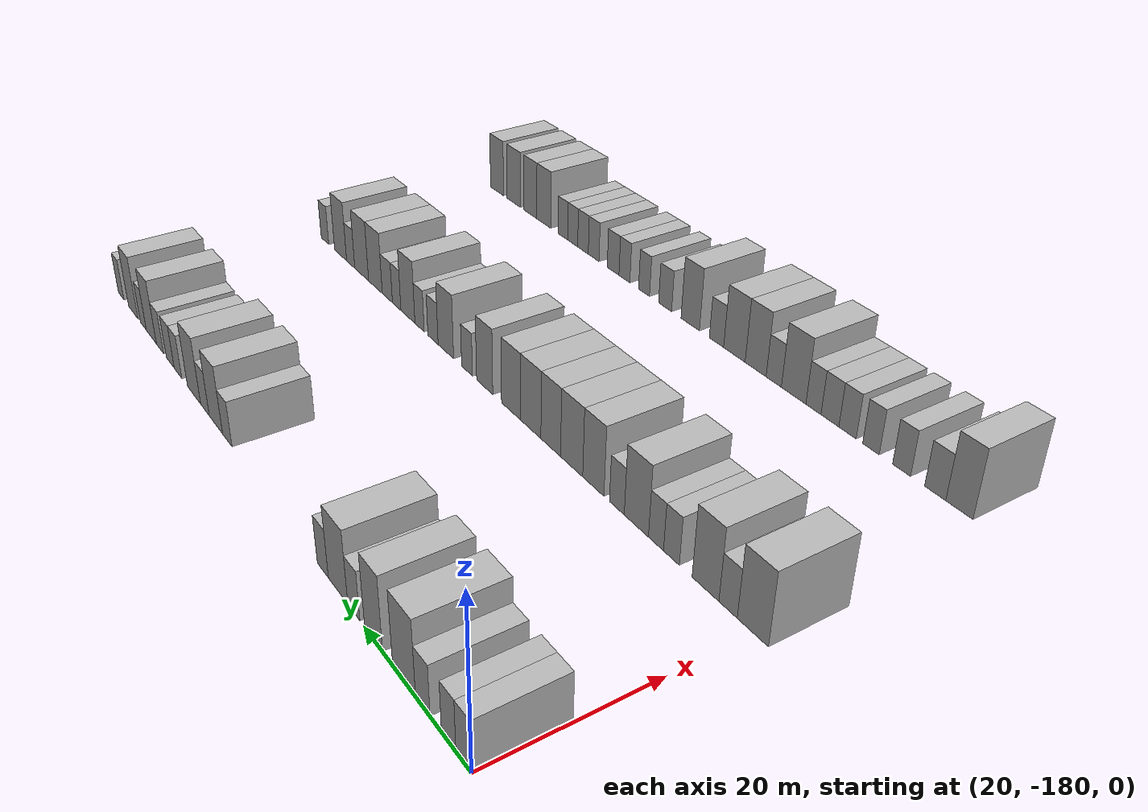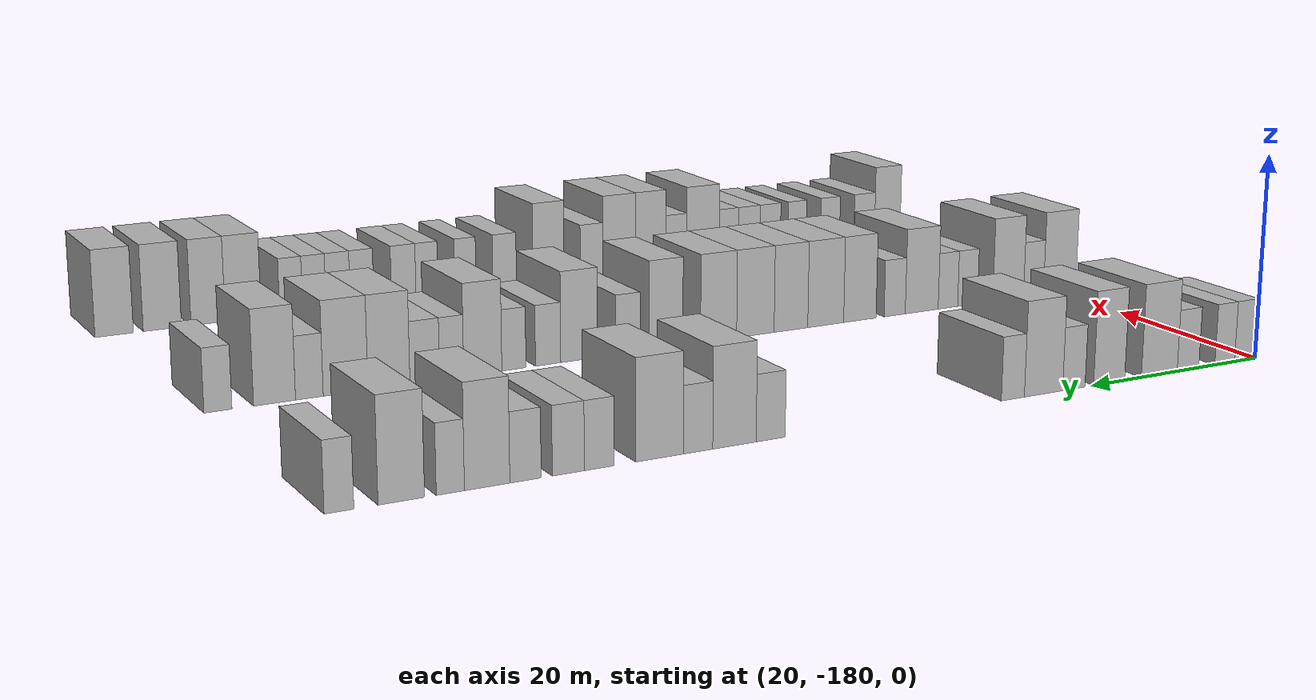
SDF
<sdf version="1.6">
 <world name="default">
  <model name="building_27">
   <static>1</static>
   <pose>25.0000 -178.6512 0 0.000000 0.000000 0.000000</pose>
   <link name="link">
    <pose>0 0 3.00 0 0 0</pose>
    <collision name="collision"><geometry><box><size>10.0000 2.5849 6.0000</size></box></geometry></collision>
    <visual name="visual">
     <cast_shadows>0</cast_shadows>
     <geometry><box><size>10.0000 2.5849 6.0000</size></box></geometry>
     <material>
      <script>
       <uri>model://HANNAS_wall/materials/scripts</uri>
       <uri>model://HANNAS_wall/materials/textures</uri>
       <name>vrc/HANNAS_wall</name>
      </script>
     </material>
    </visual>
   </link>
  </model>
  <model name="building_28">
   <static>1</static>
   <pose>25.0000 -176.1238 0 0.000000 0.000000 0.000000</pose>
   <link name="link">
    <pose>0 0 3.00 0 0 0</pose>
    <collision name="collision"><geometry><box><size>10.0000 2.4700 6.0000</size></box></geometry></collision>
    <visual name="visual">
     <cast_shadows>0</cast_shadows>
     <geometry><box><size>10.0000 2.4700 6.0000</size></box></geometry>
     <material>
      <script>
       <uri>model://HANNAS_wall/materials/scripts</uri>
       <uri>model://HANNAS_wall/materials/textures</uri>
       <name>vrc/HANNAS_wall</name>
      </script>
     </material>
    </visual>
   </link>
  </model>
  <model name="building_29">
   <static>1</static>
   <pose>25.0000 -171.5630 0 0.000000 0.000000 0.000000</pose>
   <link name="link">
    <pose>0 0 3.00 0 0 0</pose>
    <collision name="collision"><geometry><box><size>10.0000 2.6515 6.0000</size></box></geometry></collision>
    <visual name="visual">
     <cast_shadows>0</cast_shadows>
     <geometry><box><size>10.0000 2.6515 6.0000</size></box></geometry>
     <material>
      <script>
       <uri>model://HANNAS_wall/materials/scripts</uri>
       <uri>model://HANNAS_wall/materials/textures</uri>
       <name>vrc/HANNAS_wall</name>
      </script>
     </material>
    </visual>
   </link>
  </model>
  <model name="building_30">
   <static>1</static>
   <pose>25.0000 -168.0677 0 0.000000 0.000000 0.000000</pose>
   <link name="link">
    <pose>0 0 4.50 0 0 0</pose>
    <collision name="collision"><geometry><box><size>10.0000 4.3392 9.0000</size></box></geometry></collision>
    <visual name="visual">
     <cast_shadows>0</cast_shadows>
     <geometry><box><size>10.0000 4.3392 9.0000</size></box></geometry>
     <material>
      <script>
       <uri>model://HANNAS_wall/materials/scripts</uri>
       <uri>model://HANNAS_wall/materials/textures</uri>
       <name>vrc/HANNAS_wall</name>
      </script>
     </material>
    </visual>
   </link>
  </model>
  <model name="building_31">
   <static>1</static>
   <pose>25.0000 -162.0679 0 0.000000 0.000000 0.000000</pose>
   <link name="link">
    <pose>0 0 4.50 0 0 0</pose>
    <collision name="collision"><geometry><box><size>10.0000 3.6605 9.0000</size></box></geometry></collision>
    <visual name="visual">
     <cast_shadows>0</cast_shadows>
     <geometry><box><size>10.0000 3.6605 9.0000</size></box></geometry>
     <material>
      <script>
       <uri>model://HANNAS_wall/materials/scripts</uri>
       <uri>model://HANNAS_wall/materials/textures</uri>
       <name>vrc/HANNAS_wall</name>
      </script>
     </material>
    </visual>
   </link>
  </model>
  <model name="building_32">
   <static>1</static>
   <pose>25.0000 -157.9386 0 0.000000 0.000000 0.000000</pose>
   <link name="link">
    <pose>0 0 3.00 0 0 0</pose>
    <collision name="collision"><geometry><box><size>10.0000 2.5979 6.0000</size></box></geometry></collision>
    <visual name="visual">
     <cast_shadows>0</cast_shadows>
     <geometry><box><size>10.0000 2.5979 6.0000</size></box></geometry>
     <material>
      <script>
       <uri>model://HANNAS_wall/materials/scripts</uri>
       <uri>model://HANNAS_wall/materials/textures</uri>
       <name>vrc/HANNAS_wall</name>
      </script>
     </material>
    </visual>
   </link>
  </model>
  <model name="building_33">
   <static>1</static>
   <pose>25.0000 -154.4583 0 0.000000 0.000000 0.000000</pose>
   <link name="link">
    <pose>0 0 4.50 0 0 0</pose>
    <collision name="collision"><geometry><box><size>10.0000 4.3626 9.0000</size></box></geometry></collision>
    <visual name="visual">
     <cast_shadows>0</cast_shadows>
     <geometry><box><size>10.0000 4.3626 9.0000</size></box></geometry>
     <material>
      <script>
       <uri>model://HANNAS_wall/materials/scripts</uri>
       <uri>model://HANNAS_wall/materials/textures</uri>
       <name>vrc/HANNAS_wall</name>
      </script>
     </material>
    </visual>
   </link>
  </model>
  <model name="building_34">
   <static>1</static>
   <pose>25.0000 -150.9835 0 0.000000 0.000000 0.000000</pose>
   <link name="link">
    <pose>0 0 3.00 0 0 0</pose>
    <collision name="collision"><geometry><box><size>10.0000 2.5870 6.0000</size></box></geometry></collision>
    <visual name="visual">
     <cast_shadows>0</cast_shadows>
     <geometry><box><size>10.0000 2.5870 6.0000</size></box></geometry>
     <material>
      <script>
       <uri>model://HANNAS_wall/materials/scripts</uri>
       <uri>model://HANNAS_wall/materials/textures</uri>
       <name>vrc/HANNAS_wall</name>
      </script>
     </material>
    </visual>
   </link>
  </model>
  <model name="building_35">
   <static>1</static>
   <pose>25.0000 -125.3575 0 0.000000 0.000000 0.000000</pose>
   <link name="link">
    <pose>0 0 3.00 0 0 0</pose>
    <collision name="collision"><geometry><box><size>10.0000 2.8883 6.0000</size></box></geometry></collision>
    <visual name="visual">
     <cast_shadows>0</cast_shadows>
     <geometry><box><size>10.0000 2.8883 6.0000</size></box></geometry>
     <material>
      <script>
       <uri>model://HANNAS_wall/materials/scripts</uri>
       <uri>model://HANNAS_wall/materials/textures</uri>
       <name>vrc/HANNAS_wall</name>
      </script>
     </material>
    </visual>
   </link>
  </model>
  <model name="building_36">
   <static>1</static>
   <pose>25.0000 -121.7851 0 0.000000 0.000000 0.000000</pose>
   <link name="link">
    <pose>0 0 4.50 0 0 0</pose>
    <collision name="collision"><geometry><box><size>10.0000 4.2564 9.0000</size></box></geometry></collision>
    <visual name="visual">
     <cast_shadows>0</cast_shadows>
     <geometry><box><size>10.0000 4.2564 9.0000</size></box></geometry>
     <material>
      <script>
       <uri>model://HANNAS_wall/materials/scripts</uri>
       <uri>model://HANNAS_wall/materials/textures</uri>
       <name>vrc/HANNAS_wall</name>
      </script>
     </material>
    </visual>
   </link>
  </model>
  <model name="building_37">
   <static>1</static>
   <pose>25.0000 -118.2361 0 0.000000 0.000000 0.000000</pose>
   <link name="link">
    <pose>0 0 3.00 0 0 0</pose>
    <collision name="collision"><geometry><box><size>10.0000 2.8416 6.0000</size></box></geometry></collision>
    <visual name="visual">
     <cast_shadows>0</cast_shadows>
     <geometry><box><size>10.0000 2.8416 6.0000</size></box></geometry>
     <material>
      <script>
       <uri>model://HANNAS_wall/materials/scripts</uri>
       <uri>model://HANNAS_wall/materials/textures</uri>
       <name>vrc/HANNAS_wall</name>
      </script>
     </material>
    </visual>
   </link>
  </model>
  <model name="building_38">
   <static>1</static>
   <pose>25.0000 -114.5731 0 0.000000 0.000000 0.000000</pose>
   <link name="link">
    <pose>0 0 4.50 0 0 0</pose>
    <collision name="collision"><geometry><box><size>10.0000 4.4842 9.0000</size></box></geometry></collision>
    <visual name="visual">
     <cast_shadows>0</cast_shadows>
     <geometry><box><size>10.0000 4.4842 9.0000</size></box></geometry>
     <material>
      <script>
       <uri>model://HANNAS_wall/materials/scripts</uri>
       <uri>model://HANNAS_wall/materials/textures</uri>
       <name>vrc/HANNAS_wall</name>
      </script>
     </material>
    </visual>
   </link>
  </model>
  <model name="building_39">
   <static>1</static>
   <pose>25.0000 -108.9503 0 0.000000 0.000000 0.000000</pose>
   <link name="link">
    <pose>0 0 3.00 0 0 0</pose>
    <collision name="collision"><geometry><box><size>10.0000 2.7614 6.0000</size></box></geometry></collision>
    <visual name="visual">
     <cast_shadows>0</cast_shadows>
     <geometry><box><size>10.0000 2.7614 6.0000</size></box></geometry>
     <material>
      <script>
       <uri>model://HANNAS_wall/materials/scripts</uri>
       <uri>model://HANNAS_wall/materials/textures</uri>
       <name>vrc/HANNAS_wall</name>
      </script>
     </material>
    </visual>
   </link>
  </model>
  <model name="building_40">
   <static>1</static>
   <pose>25.0000 -106.1159 0 0.000000 0.000000 0.000000</pose>
   <link name="link">
    <pose>0 0 3.00 0 0 0</pose>
    <collision name="collision"><geometry><box><size>10.0000 2.9073 6.0000</size></box></geometry></collision>
    <visual name="visual">
     <cast_shadows>0</cast_shadows>
     <geometry><box><size>10.0000 2.9073 6.0000</size></box></geometry>
     <material>
      <script>
       <uri>model://HANNAS_wall/materials/scripts</uri>
       <uri>model://HANNAS_wall/materials/textures</uri>
       <name>vrc/HANNAS_wall</name>
      </script>
     </material>
    </visual>
   </link>
  </model>
  <model name="building_41">
   <static>1</static>
   <pose>25.0000 -102.2691 0 0.000000 0.000000 0.000000</pose>
   <link name="link">
    <pose>0 0 3.00 0 0 0</pose>
    <collision name="collision"><geometry><box><size>10.0000 2.7864 6.0000</size></box></geometry></collision>
    <visual name="visual">
     <cast_shadows>0</cast_shadows>
     <geometry><box><size>10.0000 2.7864 6.0000</size></box></geometry>
     <material>
      <script>
       <uri>model://HANNAS_wall/materials/scripts</uri>
       <uri>model://HANNAS_wall/materials/textures</uri>
       <name>vrc/HANNAS_wall</name>
      </script>
     </material>
    </visual>
   </link>
  </model>
  <model name="building_42">
   <static>1</static>
   <pose>25.0000 -98.8905 0 0.000000 0.000000 0.000000</pose>
   <link name="link">
    <pose>0 0 4.50 0 0 0</pose>
    <collision name="collision"><geometry><box><size>10.0000 3.9708 9.0000</size></box></geometry></collision>
    <visual name="visual">
     <cast_shadows>0</cast_shadows>
     <geometry><box><size>10.0000 3.9708 9.0000</size></box></geometry>
     <material>
      <script>
       <uri>model://HANNAS_wall/materials/scripts</uri>
       <uri>model://HANNAS_wall/materials/textures</uri>
       <name>vrc/HANNAS_wall</name>
      </script>
     </material>
    </visual>
   </link>
  </model>
  <model name="building_43">
   <static>1</static>
   <pose>25.0000 -95.6928 0 0.000000 0.000000 0.000000</pose>
   <link name="link">
    <pose>0 0 3.00 0 0 0</pose>
    <collision name="collision"><geometry><box><size>10.0000 2.4245 6.0000</size></box></geometry></collision>
    <visual name="visual">
     <cast_shadows>0</cast_shadows>
     <geometry><box><size>10.0000 2.4245 6.0000</size></box></geometry>
     <material>
      <script>
       <uri>model://HANNAS_wall/materials/scripts</uri>
       <uri>model://HANNAS_wall/materials/textures</uri>
       <name>vrc/HANNAS_wall</name>
      </script>
     </material>
    </visual>
   </link>
  </model>
  <model name="building_44">
   <static>1</static>
   <pose>25.0000 -91.5200 0 0.000000 0.000000 0.000000</pose>
   <link name="link">
    <pose>0 0 4.50 0 0 0</pose>
    <collision name="collision"><geometry><box><size>10.0000 3.9213 9.0000</size></box></geometry></collision>
    <visual name="visual">
     <cast_shadows>0</cast_shadows>
     <geometry><box><size>10.0000 3.9213 9.0000</size></box></geometry>
     <material>
      <script>
       <uri>model://HANNAS_wall/materials/scripts</uri>
       <uri>model://HANNAS_wall/materials/textures</uri>
       <name>vrc/HANNAS_wall</name>
      </script>
     </material>
    </visual>
   </link>
  </model>
  <model name="building_45">
   <static>1</static>
   <pose>25.0000 -86.3372 0 0.000000 0.000000 0.000000</pose>
   <link name="link">
    <pose>0 0 3.00 0 0 0</pose>
    <collision name="collision"><geometry><box><size>10.0000 2.4442 6.0000</size></box></geometry></collision>
    <visual name="visual">
     <cast_shadows>0</cast_shadows>
     <geometry><box><size>10.0000 2.4442 6.0000</size></box></geometry>
     <material>
      <script>
       <uri>model://HANNAS_wall/materials/scripts</uri>
       <uri>model://HANNAS_wall/materials/textures</uri>
       <name>vrc/HANNAS_wall</name>
      </script>
     </material>
    </visual>
   </link>
  </model>
  <model name="building_160">
   <static>1</static>
   <pose>55.0000 -179.8565 0 0.000000 0.000000 0.000000</pose>
   <link name="link">
    <pose>0 0 4.50 0 0 0</pose>
    <collision name="collision"><geometry><box><size>10.0000 4.3664 9.0000</size></box></geometry></collision>
    <visual name="visual">
     <cast_shadows>0</cast_shadows>
     <geometry><box><size>10.0000 4.3664 9.0000</size></box></geometry>
     <material>
      <script>
       <uri>model://HANNAS_wall/materials/scripts</uri>
       <uri>model://HANNAS_wall/materials/textures</uri>
       <name>vrc/HANNAS_wall</name>
      </script>
     </material>
    </visual>
   </link>
  </model>
  <model name="building_161">
   <static>1</static>
   <pose>55.0000 -176.3391 0 0.000000 0.000000 0.000000</pose>
   <link name="link">
    <pose>0 0 3.00 0 0 0</pose>
    <collision name="collision"><geometry><box><size>10.0000 2.6683 6.0000</size></box></geometry></collision>
    <visual name="visual">
     <cast_shadows>0</cast_shadows>
     <geometry><box><size>10.0000 2.6683 6.0000</size></box></geometry>
     <material>
      <script>
       <uri>model://HANNAS_wall/materials/scripts</uri>
       <uri>model://HANNAS_wall/materials/textures</uri>
       <name>vrc/HANNAS_wall</name>
      </script>
     </material>
    </visual>
   </link>
  </model>
  <model name="building_162">
   <static>1</static>
   <pose>55.0000 -172.9719 0 0.000000 0.000000 0.000000</pose>
   <link name="link">
    <pose>0 0 4.50 0 0 0</pose>
    <collision name="collision"><geometry><box><size>10.0000 4.0659 9.0000</size></box></geometry></collision>
    <visual name="visual">
     <cast_shadows>0</cast_shadows>
     <geometry><box><size>10.0000 4.0659 9.0000</size></box></geometry>
     <material>
      <script>
       <uri>model://HANNAS_wall/materials/scripts</uri>
       <uri>model://HANNAS_wall/materials/textures</uri>
       <name>vrc/HANNAS_wall</name>
      </script>
     </material>
    </visual>
   </link>
  </model>
  <model name="building_163">
   <static>1</static>
   <pose>55.0000 -167.6604 0 0.000000 0.000000 0.000000</pose>
   <link name="link">
    <pose>0 0 3.00 0 0 0</pose>
    <collision name="collision"><geometry><box><size>10.0000 2.5571 6.0000</size></box></geometry></collision>
    <visual name="visual">
     <cast_shadows>0</cast_shadows>
     <geometry><box><size>10.0000 2.5571 6.0000</size></box></geometry>
     <material>
      <script>
       <uri>model://HANNAS_wall/materials/scripts</uri>
       <uri>model://HANNAS_wall/materials/textures</uri>
       <name>vrc/HANNAS_wall</name>
      </script>
     </material>
    </visual>
   </link>
  </model>
  <model name="building_164">
   <static>1</static>
   <pose>55.0000 -165.1334 0 0.000000 0.000000 0.000000</pose>
   <link name="link">
    <pose>0 0 3.00 0 0 0</pose>
    <collision name="collision"><geometry><box><size>10.0000 2.4970 6.0000</size></box></geometry></collision>
    <visual name="visual">
     <cast_shadows>0</cast_shadows>
     <geometry><box><size>10.0000 2.4970 6.0000</size></box></geometry>
     <material>
      <script>
       <uri>model://HANNAS_wall/materials/scripts</uri>
       <uri>model://HANNAS_wall/materials/textures</uri>
       <name>vrc/HANNAS_wall</name>
      </script>
     </material>
    </visual>
   </link>
  </model>
  <model name="building_165">
   <static>1</static>
   <pose>55.0000 -161.8018 0 0.000000 0.000000 0.000000</pose>
   <link name="link">
    <pose>0 0 4.50 0 0 0</pose>
    <collision name="collision"><geometry><box><size>10.0000 4.1663 9.0000</size></box></geometry></collision>
    <visual name="visual">
     <cast_shadows>0</cast_shadows>
     <geometry><box><size>10.0000 4.1663 9.0000</size></box></geometry>
     <material>
      <script>
       <uri>model://HANNAS_wall/materials/scripts</uri>
       <uri>model://HANNAS_wall/materials/textures</uri>
       <name>vrc/HANNAS_wall</name>
      </script>
     </material>
    </visual>
   </link>
  </model>
  <model name="building_166">
   <static>1</static>
   <pose>55.0000 -158.3979 0 0.000000 0.000000 0.000000</pose>
   <link name="link">
    <pose>0 0 3.00 0 0 0</pose>
    <collision name="collision"><geometry><box><size>10.0000 2.6414 6.0000</size></box></geometry></collision>
    <visual name="visual">
     <cast_shadows>0</cast_shadows>
     <geometry><box><size>10.0000 2.6414 6.0000</size></box></geometry>
     <material>
      <script>
       <uri>model://HANNAS_wall/materials/scripts</uri>
       <uri>model://HANNAS_wall/materials/textures</uri>
       <name>vrc/HANNAS_wall</name>
      </script>
     </material>
    </visual>
   </link>
  </model>
  <model name="building_167">
   <static>1</static>
   <pose>55.0000 -154.0899 0 0.000000 0.000000 0.000000</pose>
   <link name="link">
    <pose>0 0 4.50 0 0 0</pose>
    <collision name="collision"><geometry><box><size>10.0000 3.9746 9.0000</size></box></geometry></collision>
    <visual name="visual">
     <cast_shadows>0</cast_shadows>
     <geometry><box><size>10.0000 3.9746 9.0000</size></box></geometry>
     <material>
      <script>
       <uri>model://HANNAS_wall/materials/scripts</uri>
       <uri>model://HANNAS_wall/materials/textures</uri>
       <name>vrc/HANNAS_wall</name>
      </script>
     </material>
    </visual>
   </link>
  </model>
  <model name="building_168">
   <static>1</static>
   <pose>55.0000 -149.9347 0 0.000000 0.000000 0.000000</pose>
   <link name="link">
    <pose>0 0 4.50 0 0 0</pose>
    <collision name="collision"><geometry><box><size>10.0000 4.3358 9.0000</size></box></geometry></collision>
    <visual name="visual">
     <cast_shadows>0</cast_shadows>
     <geometry><box><size>10.0000 4.3358 9.0000</size></box></geometry>
     <material>
      <script>
       <uri>model://HANNAS_wall/materials/scripts</uri>
       <uri>model://HANNAS_wall/materials/textures</uri>
       <name>vrc/HANNAS_wall</name>
      </script>
     </material>
    </visual>
   </link>
  </model>
  <model name="building_169">
   <static>1</static>
   <pose>55.0000 -145.7688 0 0.000000 0.000000 0.000000</pose>
   <link name="link">
    <pose>0 0 4.50 0 0 0</pose>
    <collision name="collision"><geometry><box><size>10.0000 3.9960 9.0000</size></box></geometry></collision>
    <visual name="visual">
     <cast_shadows>0</cast_shadows>
     <geometry><box><size>10.0000 3.9960 9.0000</size></box></geometry>
     <material>
      <script>
       <uri>model://HANNAS_wall/materials/scripts</uri>
       <uri>model://HANNAS_wall/materials/textures</uri>
       <name>vrc/HANNAS_wall</name>
      </script>
     </material>
    </visual>
   </link>
  </model>
  <model name="building_170">
   <static>1</static>
   <pose>55.0000 -141.5825 0 0.000000 0.000000 0.000000</pose>
   <link name="link">
    <pose>0 0 4.50 0 0 0</pose>
    <collision name="collision"><geometry><box><size>10.0000 4.3766 9.0000</size></box></geometry></collision>
    <visual name="visual">
     <cast_shadows>0</cast_shadows>
     <geometry><box><size>10.0000 4.3766 9.0000</size></box></geometry>
     <material>
      <script>
       <uri>model://HANNAS_wall/materials/scripts</uri>
       <uri>model://HANNAS_wall/materials/textures</uri>
       <name>vrc/HANNAS_wall</name>
      </script>
     </material>
    </visual>
   </link>
  </model>
  <model name="building_171">
   <static>1</static>
   <pose>55.0000 -137.3225 0 0.000000 0.000000 0.000000</pose>
   <link name="link">
    <pose>0 0 4.50 0 0 0</pose>
    <collision name="collision"><geometry><box><size>10.0000 4.1432 9.0000</size></box></geometry></collision>
    <visual name="visual">
     <cast_shadows>0</cast_shadows>
     <geometry><box><size>10.0000 4.1432 9.0000</size></box></geometry>
     <material>
      <script>
       <uri>model://HANNAS_wall/materials/scripts</uri>
       <uri>model://HANNAS_wall/materials/textures</uri>
       <name>vrc/HANNAS_wall</name>
      </script>
     </material>
    </visual>
   </link>
  </model>
  <model name="building_172">
   <static>1</static>
   <pose>55.0000 -131.3572 0 0.000000 0.000000 0.000000</pose>
   <link name="link">
    <pose>0 0 4.50 0 0 0</pose>
    <collision name="collision"><geometry><box><size>10.0000 3.7874 9.0000</size></box></geometry></collision>
    <visual name="visual">
     <cast_shadows>0</cast_shadows>
     <geometry><box><size>10.0000 3.7874 9.0000</size></box></geometry>
     <material>
      <script>
       <uri>model://HANNAS_wall/materials/scripts</uri>
       <uri>model://HANNAS_wall/materials/textures</uri>
       <name>vrc/HANNAS_wall</name>
      </script>
     </material>
    </visual>
   </link>
  </model>
  <model name="building_173">
   <static>1</static>
   <pose>55.0000 -127.1449 0 0.000000 0.000000 0.000000</pose>
   <link name="link">
    <pose>0 0 3.00 0 0 0</pose>
    <collision name="collision"><geometry><box><size>10.0000 2.6373 6.0000</size></box></geometry></collision>
    <visual name="visual">
     <cast_shadows>0</cast_shadows>
     <geometry><box><size>10.0000 2.6373 6.0000</size></box></geometry>
     <material>
      <script>
       <uri>model://HANNAS_wall/materials/scripts</uri>
       <uri>model://HANNAS_wall/materials/textures</uri>
       <name>vrc/HANNAS_wall</name>
      </script>
     </material>
    </visual>
   </link>
  </model>
  <model name="building_174">
   <static>1</static>
   <pose>55.0000 -121.8419 0 0.000000 0.000000 0.000000</pose>
   <link name="link">
    <pose>0 0 4.50 0 0 0</pose>
    <collision name="collision"><geometry><box><size>10.0000 3.9687 9.0000</size></box></geometry></collision>
    <visual name="visual">
     <cast_shadows>0</cast_shadows>
     <geometry><box><size>10.0000 3.9687 9.0000</size></box></geometry>
     <material>
      <script>
       <uri>model://HANNAS_wall/materials/scripts</uri>
       <uri>model://HANNAS_wall/materials/textures</uri>
       <name>vrc/HANNAS_wall</name>
      </script>
     </material>
    </visual>
   </link>
  </model>
  <model name="building_175">
   <static>1</static>
   <pose>55.0000 -118.5146 0 0.000000 0.000000 0.000000</pose>
   <link name="link">
    <pose>0 0 3.00 0 0 0</pose>
    <collision name="collision"><geometry><box><size>10.0000 2.6859 6.0000</size></box></geometry></collision>
    <visual name="visual">
     <cast_shadows>0</cast_shadows>
     <geometry><box><size>10.0000 2.6859 6.0000</size></box></geometry>
     <material>
      <script>
       <uri>model://HANNAS_wall/materials/scripts</uri>
       <uri>model://HANNAS_wall/materials/textures</uri>
       <name>vrc/HANNAS_wall</name>
      </script>
     </material>
    </visual>
   </link>
  </model>
  <model name="building_176">
   <static>1</static>
   <pose>55.0000 -114.9126 0 0.000000 0.000000 0.000000</pose>
   <link name="link">
    <pose>0 0 3.00 0 0 0</pose>
    <collision name="collision"><geometry><box><size>10.0000 2.5181 6.0000</size></box></geometry></collision>
    <visual name="visual">
     <cast_shadows>0</cast_shadows>
     <geometry><box><size>10.0000 2.5181 6.0000</size></box></geometry>
     <material>
      <script>
       <uri>model://HANNAS_wall/materials/scripts</uri>
       <uri>model://HANNAS_wall/materials/textures</uri>
       <name>vrc/HANNAS_wall</name>
      </script>
     </material>
    </visual>
   </link>
  </model>
  <model name="building_177">
   <static>1</static>
   <pose>55.0000 -111.6935 0 0.000000 0.000000 0.000000</pose>
   <link name="link">
    <pose>0 0 4.50 0 0 0</pose>
    <collision name="collision"><geometry><box><size>10.0000 3.9202 9.0000</size></box></geometry></collision>
    <visual name="visual">
     <cast_shadows>0</cast_shadows>
     <geometry><box><size>10.0000 3.9202 9.0000</size></box></geometry>
     <material>
      <script>
       <uri>model://HANNAS_wall/materials/scripts</uri>
       <uri>model://HANNAS_wall/materials/textures</uri>
       <name>vrc/HANNAS_wall</name>
      </script>
     </material>
    </visual>
   </link>
  </model>
  <model name="building_178">
   <static>1</static>
   <pose>55.0000 -108.5100 0 0.000000 0.000000 0.000000</pose>
   <link name="link">
    <pose>0 0 3.00 0 0 0</pose>
    <collision name="collision"><geometry><box><size>10.0000 2.4469 6.0000</size></box></geometry></collision>
    <visual name="visual">
     <cast_shadows>0</cast_shadows>
     <geometry><box><size>10.0000 2.4469 6.0000</size></box></geometry>
     <material>
      <script>
       <uri>model://HANNAS_wall/materials/scripts</uri>
       <uri>model://HANNAS_wall/materials/textures</uri>
       <name>vrc/HANNAS_wall</name>
      </script>
     </material>
    </visual>
   </link>
  </model>
  <model name="building_179">
   <static>1</static>
   <pose>55.0000 -105.7951 0 0.000000 0.000000 0.000000</pose>
   <link name="link">
    <pose>0 0 3.00 0 0 0</pose>
    <collision name="collision"><geometry><box><size>10.0000 2.9828 6.0000</size></box></geometry></collision>
    <visual name="visual">
     <cast_shadows>0</cast_shadows>
     <geometry><box><size>10.0000 2.9828 6.0000</size></box></geometry>
     <material>
      <script>
       <uri>model://HANNAS_wall/materials/scripts</uri>
       <uri>model://HANNAS_wall/materials/textures</uri>
       <name>vrc/HANNAS_wall</name>
      </script>
     </material>
    </visual>
   </link>
  </model>
  <model name="building_180">
   <static>1</static>
   <pose>55.0000 -102.2312 0 0.000000 0.000000 0.000000</pose>
   <link name="link">
    <pose>0 0 4.50 0 0 0</pose>
    <collision name="collision"><geometry><box><size>10.0000 4.1450 9.0000</size></box></geometry></collision>
    <visual name="visual">
     <cast_shadows>0</cast_shadows>
     <geometry><box><size>10.0000 4.1450 9.0000</size></box></geometry>
     <material>
      <script>
       <uri>model://HANNAS_wall/materials/scripts</uri>
       <uri>model://HANNAS_wall/materials/textures</uri>
       <name>vrc/HANNAS_wall</name>
      </script>
     </material>
    </visual>
   </link>
  </model>
  <model name="building_181">
   <static>1</static>
   <pose>55.0000 -97.9884 0 0.000000 0.000000 0.000000</pose>
   <link name="link">
    <pose>0 0 4.50 0 0 0</pose>
    <collision name="collision"><geometry><box><size>10.0000 4.3406 9.0000</size></box></geometry></collision>
    <visual name="visual">
     <cast_shadows>0</cast_shadows>
     <geometry><box><size>10.0000 4.3406 9.0000</size></box></geometry>
     <material>
      <script>
       <uri>model://HANNAS_wall/materials/scripts</uri>
       <uri>model://HANNAS_wall/materials/textures</uri>
       <name>vrc/HANNAS_wall</name>
      </script>
     </material>
    </visual>
   </link>
  </model>
  <model name="building_182">
   <static>1</static>
   <pose>55.0000 -94.4969 0 0.000000 0.000000 0.000000</pose>
   <link name="link">
    <pose>0 0 3.00 0 0 0</pose>
    <collision name="collision"><geometry><box><size>10.0000 2.6424 6.0000</size></box></geometry></collision>
    <visual name="visual">
     <cast_shadows>0</cast_shadows>
     <geometry><box><size>10.0000 2.6424 6.0000</size></box></geometry>
     <material>
      <script>
       <uri>model://HANNAS_wall/materials/scripts</uri>
       <uri>model://HANNAS_wall/materials/textures</uri>
       <name>vrc/HANNAS_wall</name>
      </script>
     </material>
    </visual>
   </link>
  </model>
  <model name="building_183">
   <static>1</static>
   <pose>55.0000 -91.2014 0 0.000000 0.000000 0.000000</pose>
   <link name="link">
    <pose>0 0 4.50 0 0 0</pose>
    <collision name="collision"><geometry><box><size>10.0000 3.9485 9.0000</size></box></geometry></collision>
    <visual name="visual">
     <cast_shadows>0</cast_shadows>
     <geometry><box><size>10.0000 3.9485 9.0000</size></box></geometry>
     <material>
      <script>
       <uri>model://HANNAS_wall/materials/scripts</uri>
       <uri>model://HANNAS_wall/materials/textures</uri>
       <name>vrc/HANNAS_wall</name>
      </script>
     </material>
    </visual>
   </link>
  </model>
  <model name="building_184">
   <static>1</static>
   <pose>55.0000 -85.9376 0 0.000000 0.000000 0.000000</pose>
   <link name="link">
    <pose>0 0 3.00 0 0 0</pose>
    <collision name="collision"><geometry><box><size>10.0000 2.5792 6.0000</size></box></geometry></collision>
    <visual name="visual">
     <cast_shadows>0</cast_shadows>
     <geometry><box><size>10.0000 2.5792 6.0000</size></box></geometry>
     <material>
      <script>
       <uri>model://HANNAS_wall/materials/scripts</uri>
       <uri>model://HANNAS_wall/materials/textures</uri>
       <name>vrc/HANNAS_wall</name>
      </script>
     </material>
    </visual>
   </link>
  </model>
  <model name="building_302">
   <static>1</static>
   <pose>85.0000 -177.6055 0 0.000000 0.000000 0.000000</pose>
   <link name="link">
    <pose>0 0 4.50 0 0 0</pose>
    <collision name="collision"><geometry><box><size>10.0000 3.6654 9.0000</size></box></geometry></collision>
    <visual name="visual">
     <cast_shadows>0</cast_shadows>
     <geometry><box><size>10.0000 3.6654 9.0000</size></box></geometry>
     <material>
      <script>
       <uri>model://HANNAS_wall/materials/scripts</uri>
       <uri>model://HANNAS_wall/materials/textures</uri>
       <name>vrc/HANNAS_wall</name>
      </script>
     </material>
    </visual>
   </link>
  </model>
  <model name="building_303">
   <static>1</static>
   <pose>85.0000 -174.3090 0 0.000000 0.000000 0.000000</pose>
   <link name="link">
    <pose>0 0 3.00 0 0 0</pose>
    <collision name="collision"><geometry><box><size>10.0000 2.9275 6.0000</size></box></geometry></collision>
    <visual name="visual">
     <cast_shadows>0</cast_shadows>
     <geometry><box><size>10.0000 2.9275 6.0000</size></box></geometry>
     <material>
      <script>
       <uri>model://HANNAS_wall/materials/scripts</uri>
       <uri>model://HANNAS_wall/materials/textures</uri>
       <name>vrc/HANNAS_wall</name>
      </script>
     </material>
    </visual>
   </link>
  </model>
  <model name="building_304">
   <static>1</static>
   <pose>85.0000 -169.5321 0 0.000000 0.000000 0.000000</pose>
   <link name="link">
    <pose>0 0 3.00 0 0 0</pose>
    <collision name="collision"><geometry><box><size>10.0000 2.6265 6.0000</size></box></geometry></collision>
    <visual name="visual">
     <cast_shadows>0</cast_shadows>
     <geometry><box><size>10.0000 2.6265 6.0000</size></box></geometry>
     <material>
      <script>
       <uri>model://HANNAS_wall/materials/scripts</uri>
       <uri>model://HANNAS_wall/materials/textures</uri>
       <name>vrc/HANNAS_wall</name>
      </script>
     </material>
    </visual>
   </link>
  </model>
  <model name="building_305">
   <static>1</static>
   <pose>85.0000 -164.9484 0 0.000000 0.000000 0.000000</pose>
   <link name="link">
    <pose>0 0 3.00 0 0 0</pose>
    <collision name="collision"><geometry><box><size>10.0000 2.5409 6.0000</size></box></geometry></collision>
    <visual name="visual">
     <cast_shadows>0</cast_shadows>
     <geometry><box><size>10.0000 2.5409 6.0000</size></box></geometry>
     <material>
      <script>
       <uri>model://HANNAS_wall/materials/scripts</uri>
       <uri>model://HANNAS_wall/materials/textures</uri>
       <name>vrc/HANNAS_wall</name>
      </script>
     </material>
    </visual>
   </link>
  </model>
  <model name="building_306">
   <static>1</static>
   <pose>85.0000 -161.2996 0 0.000000 0.000000 0.000000</pose>
   <link name="link">
    <pose>0 0 3.00 0 0 0</pose>
    <collision name="collision"><geometry><box><size>10.0000 2.7566 6.0000</size></box></geometry></collision>
    <visual name="visual">
     <cast_shadows>0</cast_shadows>
     <geometry><box><size>10.0000 2.7566 6.0000</size></box></geometry>
     <material>
      <script>
       <uri>model://HANNAS_wall/materials/scripts</uri>
       <uri>model://HANNAS_wall/materials/textures</uri>
       <name>vrc/HANNAS_wall</name>
      </script>
     </material>
    </visual>
   </link>
  </model>
  <model name="building_307">
   <static>1</static>
   <pose>85.0000 -158.4620 0 0.000000 0.000000 0.000000</pose>
   <link name="link">
    <pose>0 0 3.00 0 0 0</pose>
    <collision name="collision"><geometry><box><size>10.0000 2.9187 6.0000</size></box></geometry></collision>
    <visual name="visual">
     <cast_shadows>0</cast_shadows>
     <geometry><box><size>10.0000 2.9187 6.0000</size></box></geometry>
     <material>
      <script>
       <uri>model://HANNAS_wall/materials/scripts</uri>
       <uri>model://HANNAS_wall/materials/textures</uri>
       <name>vrc/HANNAS_wall</name>
      </script>
     </material>
    </visual>
   </link>
  </model>
  <model name="building_308">
   <static>1</static>
   <pose>85.0000 -155.7391 0 0.000000 0.000000 0.000000</pose>
   <link name="link">
    <pose>0 0 3.00 0 0 0</pose>
    <collision name="collision"><geometry><box><size>10.0000 2.5269 6.0000</size></box></geometry></collision>
    <visual name="visual">
     <cast_shadows>0</cast_shadows>
     <geometry><box><size>10.0000 2.5269 6.0000</size></box></geometry>
     <material>
      <script>
       <uri>model://HANNAS_wall/materials/scripts</uri>
       <uri>model://HANNAS_wall/materials/textures</uri>
       <name>vrc/HANNAS_wall</name>
      </script>
     </material>
    </visual>
   </link>
  </model>
  <model name="building_309">
   <static>1</static>
   <pose>85.0000 -152.3525 0 0.000000 0.000000 0.000000</pose>
   <link name="link">
    <pose>0 0 4.50 0 0 0</pose>
    <collision name="collision"><geometry><box><size>10.0000 4.2465 9.0000</size></box></geometry></collision>
    <visual name="visual">
     <cast_shadows>0</cast_shadows>
     <geometry><box><size>10.0000 4.2465 9.0000</size></box></geometry>
     <material>
      <script>
       <uri>model://HANNAS_wall/materials/scripts</uri>
       <uri>model://HANNAS_wall/materials/textures</uri>
       <name>vrc/HANNAS_wall</name>
      </script>
     </material>
    </visual>
   </link>
  </model>
  <model name="building_310">
   <static>1</static>
   <pose>85.0000 -148.8639 0 0.000000 0.000000 0.000000</pose>
   <link name="link">
    <pose>0 0 3.00 0 0 0</pose>
    <collision name="collision"><geometry><box><size>10.0000 2.7305 6.0000</size></box></geometry></collision>
    <visual name="visual">
     <cast_shadows>0</cast_shadows>
     <geometry><box><size>10.0000 2.7305 6.0000</size></box></geometry>
     <material>
      <script>
       <uri>model://HANNAS_wall/materials/scripts</uri>
       <uri>model://HANNAS_wall/materials/textures</uri>
       <name>vrc/HANNAS_wall</name>
      </script>
     </material>
    </visual>
   </link>
  </model>
  <model name="building_311">
   <static>1</static>
   <pose>85.0000 -145.5647 0 0.000000 0.000000 0.000000</pose>
   <link name="link">
    <pose>0 0 4.50 0 0 0</pose>
    <collision name="collision"><geometry><box><size>10.0000 3.8679 9.0000</size></box></geometry></collision>
    <visual name="visual">
     <cast_shadows>0</cast_shadows>
     <geometry><box><size>10.0000 3.8679 9.0000</size></box></geometry>
     <material>
      <script>
       <uri>model://HANNAS_wall/materials/scripts</uri>
       <uri>model://HANNAS_wall/materials/textures</uri>
       <name>vrc/HANNAS_wall</name>
      </script>
     </material>
    </visual>
   </link>
  </model>
  <model name="building_312">
   <static>1</static>
   <pose>85.0000 -141.5733 0 0.000000 0.000000 0.000000</pose>
   <link name="link">
    <pose>0 0 4.50 0 0 0</pose>
    <collision name="collision"><geometry><box><size>10.0000 4.1150 9.0000</size></box></geometry></collision>
    <visual name="visual">
     <cast_shadows>0</cast_shadows>
     <geometry><box><size>10.0000 4.1150 9.0000</size></box></geometry>
     <material>
      <script>
       <uri>model://HANNAS_wall/materials/scripts</uri>
       <uri>model://HANNAS_wall/materials/textures</uri>
       <name>vrc/HANNAS_wall</name>
      </script>
     </material>
    </visual>
   </link>
  </model>
  <model name="building_313">
   <static>1</static>
   <pose>85.0000 -138.1073 0 0.000000 0.000000 0.000000</pose>
   <link name="link">
    <pose>0 0 3.00 0 0 0</pose>
    <collision name="collision"><geometry><box><size>10.0000 2.8169 6.0000</size></box></geometry></collision>
    <visual name="visual">
     <cast_shadows>0</cast_shadows>
     <geometry><box><size>10.0000 2.8169 6.0000</size></box></geometry>
     <material>
      <script>
       <uri>model://HANNAS_wall/materials/scripts</uri>
       <uri>model://HANNAS_wall/materials/textures</uri>
       <name>vrc/HANNAS_wall</name>
      </script>
     </material>
    </visual>
   </link>
  </model>
  <model name="building_314">
   <static>1</static>
   <pose>85.0000 -132.7966 0 0.000000 0.000000 0.000000</pose>
   <link name="link">
    <pose>0 0 4.50 0 0 0</pose>
    <collision name="collision"><geometry><box><size>10.0000 3.8046 9.0000</size></box></geometry></collision>
    <visual name="visual">
     <cast_shadows>0</cast_shadows>
     <geometry><box><size>10.0000 3.8046 9.0000</size></box></geometry>
     <material>
      <script>
       <uri>model://HANNAS_wall/materials/scripts</uri>
       <uri>model://HANNAS_wall/materials/textures</uri>
       <name>vrc/HANNAS_wall</name>
      </script>
     </material>
    </visual>
   </link>
  </model>
  <model name="building_315">
   <static>1</static>
   <pose>85.0000 -127.4838 0 0.000000 0.000000 0.000000</pose>
   <link name="link">
    <pose>0 0 3.00 0 0 0</pose>
    <collision name="collision"><geometry><box><size>10.0000 2.8210 6.0000</size></box></geometry></collision>
    <visual name="visual">
     <cast_shadows>0</cast_shadows>
     <geometry><box><size>10.0000 2.8210 6.0000</size></box></geometry>
     <material>
      <script>
       <uri>model://HANNAS_wall/materials/scripts</uri>
       <uri>model://HANNAS_wall/materials/textures</uri>
       <name>vrc/HANNAS_wall</name>
      </script>
     </material>
    </visual>
   </link>
  </model>
  <model name="building_316">
   <static>1</static>
   <pose>85.0000 -122.8370 0 0.000000 0.000000 0.000000</pose>
   <link name="link">
    <pose>0 0 3.00 0 0 0</pose>
    <collision name="collision"><geometry><box><size>10.0000 2.4726 6.0000</size></box></geometry></collision>
    <visual name="visual">
     <cast_shadows>0</cast_shadows>
     <geometry><box><size>10.0000 2.4726 6.0000</size></box></geometry>
     <material>
      <script>
       <uri>model://HANNAS_wall/materials/scripts</uri>
       <uri>model://HANNAS_wall/materials/textures</uri>
       <name>vrc/HANNAS_wall</name>
      </script>
     </material>
    </visual>
   </link>
  </model>
  <model name="building_317">
   <static>1</static>
   <pose>85.0000 -118.3335 0 0.000000 0.000000 0.000000</pose>
   <link name="link">
    <pose>0 0 3.00 0 0 0</pose>
    <collision name="collision"><geometry><box><size>10.0000 2.5343 6.0000</size></box></geometry></collision>
    <visual name="visual">
     <cast_shadows>0</cast_shadows>
     <geometry><box><size>10.0000 2.5343 6.0000</size></box></geometry>
     <material>
      <script>
       <uri>model://HANNAS_wall/materials/scripts</uri>
       <uri>model://HANNAS_wall/materials/textures</uri>
       <name>vrc/HANNAS_wall</name>
      </script>
     </material>
    </visual>
   </link>
  </model>
  <model name="building_318">
   <static>1</static>
   <pose>85.0000 -115.6605 0 0.000000 0.000000 0.000000</pose>
   <link name="link">
    <pose>0 0 3.00 0 0 0</pose>
    <collision name="collision"><geometry><box><size>10.0000 2.8118 6.0000</size></box></geometry></collision>
    <visual name="visual">
     <cast_shadows>0</cast_shadows>
     <geometry><box><size>10.0000 2.8118 6.0000</size></box></geometry>
     <material>
      <script>
       <uri>model://HANNAS_wall/materials/scripts</uri>
       <uri>model://HANNAS_wall/materials/textures</uri>
       <name>vrc/HANNAS_wall</name>
      </script>
     </material>
    </visual>
   </link>
  </model>
  <model name="building_319">
   <static>1</static>
   <pose>85.0000 -110.9232 0 0.000000 0.000000 0.000000</pose>
   <link name="link">
    <pose>0 0 3.00 0 0 0</pose>
    <collision name="collision"><geometry><box><size>10.0000 2.6627 6.0000</size></box></geometry></collision>
    <visual name="visual">
     <cast_shadows>0</cast_shadows>
     <geometry><box><size>10.0000 2.6627 6.0000</size></box></geometry>
     <material>
      <script>
       <uri>model://HANNAS_wall/materials/scripts</uri>
       <uri>model://HANNAS_wall/materials/textures</uri>
       <name>vrc/HANNAS_wall</name>
      </script>
     </material>
    </visual>
   </link>
  </model>
  <model name="building_320">
   <static>1</static>
   <pose>85.0000 -108.2474 0 0.000000 0.000000 0.000000</pose>
   <link name="link">
    <pose>0 0 3.00 0 0 0</pose>
    <collision name="collision"><geometry><box><size>10.0000 2.6890 6.0000</size></box></geometry></collision>
    <visual name="visual">
     <cast_shadows>0</cast_shadows>
     <geometry><box><size>10.0000 2.6890 6.0000</size></box></geometry>
     <material>
      <script>
       <uri>model://HANNAS_wall/materials/scripts</uri>
       <uri>model://HANNAS_wall/materials/textures</uri>
       <name>vrc/HANNAS_wall</name>
      </script>
     </material>
    </visual>
   </link>
  </model>
  <model name="building_321">
   <static>1</static>
   <pose>85.0000 -105.6104 0 0.000000 0.000000 0.000000</pose>
   <link name="link">
    <pose>0 0 3.00 0 0 0</pose>
    <collision name="collision"><geometry><box><size>10.0000 2.5849 6.0000</size></box></geometry></collision>
    <visual name="visual">
     <cast_shadows>0</cast_shadows>
     <geometry><box><size>10.0000 2.5849 6.0000</size></box></geometry>
     <material>
      <script>
       <uri>model://HANNAS_wall/materials/scripts</uri>
       <uri>model://HANNAS_wall/materials/textures</uri>
       <name>vrc/HANNAS_wall</name>
      </script>
     </material>
    </visual>
   </link>
  </model>
  <model name="building_322">
   <static>1</static>
   <pose>85.0000 -103.0660 0 0.000000 0.000000 0.000000</pose>
   <link name="link">
    <pose>0 0 3.00 0 0 0</pose>
    <collision name="collision"><geometry><box><size>10.0000 2.5040 6.0000</size></box></geometry></collision>
    <visual name="visual">
     <cast_shadows>0</cast_shadows>
     <geometry><box><size>10.0000 2.5040 6.0000</size></box></geometry>
     <material>
      <script>
       <uri>model://HANNAS_wall/materials/scripts</uri>
       <uri>model://HANNAS_wall/materials/textures</uri>
       <name>vrc/HANNAS_wall</name>
      </script>
     </material>
    </visual>
   </link>
  </model>
  <model name="building_323">
   <static>1</static>
   <pose>85.0000 -97.8947 0 0.000000 0.000000 0.000000</pose>
   <link name="link">
    <pose>0 0 4.50 0 0 0</pose>
    <collision name="collision"><geometry><box><size>10.0000 3.8387 9.0000</size></box></geometry></collision>
    <visual name="visual">
     <cast_shadows>0</cast_shadows>
     <geometry><box><size>10.0000 3.8387 9.0000</size></box></geometry>
     <material>
      <script>
       <uri>model://HANNAS_wall/materials/scripts</uri>
       <uri>model://HANNAS_wall/materials/textures</uri>
       <name>vrc/HANNAS_wall</name>
      </script>
     </material>
    </visual>
   </link>
  </model>
  <model name="building_324">
   <static>1</static>
   <pose>85.0000 -94.1691 0 0.000000 0.000000 0.000000</pose>
   <link name="link">
    <pose>0 0 4.50 0 0 0</pose>
    <collision name="collision"><geometry><box><size>10.0000 3.6125 9.0000</size></box></geometry></collision>
    <visual name="visual">
     <cast_shadows>0</cast_shadows>
     <geometry><box><size>10.0000 3.6125 9.0000</size></box></geometry>
     <material>
      <script>
       <uri>model://HANNAS_wall/materials/scripts</uri>
       <uri>model://HANNAS_wall/materials/textures</uri>
       <name>vrc/HANNAS_wall</name>
      </script>
     </material>
    </visual>
   </link>
  </model>
  <model name="building_325">
   <static>1</static>
   <pose>85.0000 -89.3875 0 0.000000 0.000000 0.000000</pose>
   <link name="link">
    <pose>0 0 4.50 0 0 0</pose>
    <collision name="collision"><geometry><box><size>10.0000 3.9507 9.0000</size></box></geometry></collision>
    <visual name="visual">
     <cast_shadows>0</cast_shadows>
     <geometry><box><size>10.0000 3.9507 9.0000</size></box></geometry>
     <material>
      <script>
       <uri>model://HANNAS_wall/materials/scripts</uri>
       <uri>model://HANNAS_wall/materials/textures</uri>
       <name>vrc/HANNAS_wall</name>
      </script>
     </material>
    </visual>
   </link>
  </model>
  <model name="building_326">
   <static>1</static>
   <pose>85.0000 -84.4592 0 0.000000 0.000000 0.000000</pose>
   <link name="link">
    <pose>0 0 4.50 0 0 0</pose>
    <collision name="collision"><geometry><box><size>10.0000 3.9059 9.0000</size></box></geometry></collision>
    <visual name="visual">
     <cast_shadows>0</cast_shadows>
     <geometry><box><size>10.0000 3.9059 9.0000</size></box></geometry>
     <material>
      <script>
       <uri>model://HANNAS_wall/materials/scripts</uri>
       <uri>model://HANNAS_wall/materials/textures</uri>
       <name>vrc/HANNAS_wall</name>
      </script>
     </material>
    </visual>
   </link>
  </model>
 </world>
</sdf>
